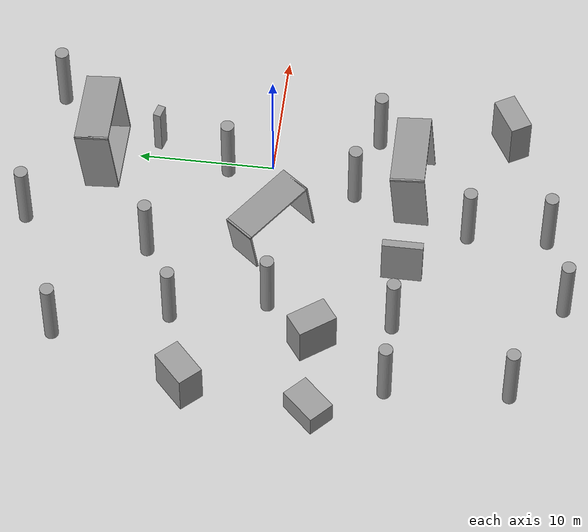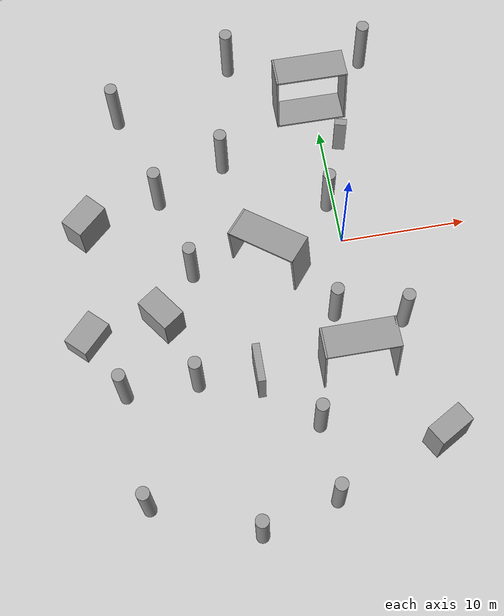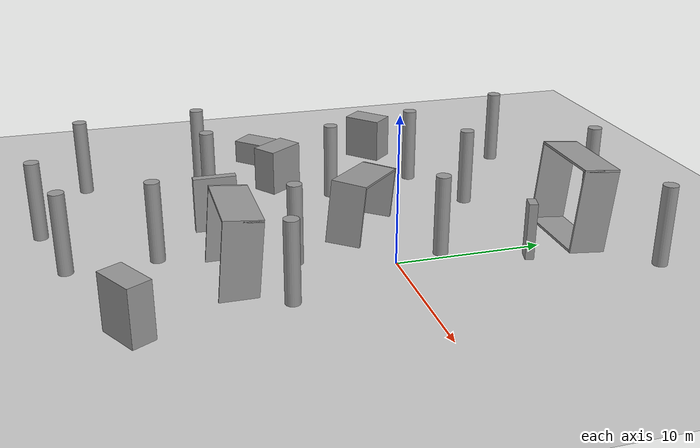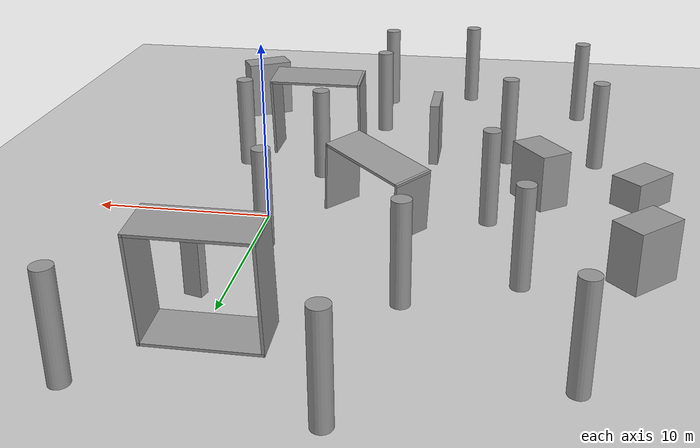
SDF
<sdf version="1.6">
 <world name="default">
  <model name="ground_plane">
   <static>1</static>
   <link name="link">
    <collision name="collision">
     <geometry><plane><normal>0 0 1</normal><size>100 100</size></plane></geometry>
     <surface><friction><ode><mu>100</mu><mu2>50</mu2></ode></friction></surface>
    </collision>
    <visual name="visual">
     <cast_shadows>0</cast_shadows>
     <geometry><plane><normal>0 0 1</normal><size>100 100</size></plane></geometry>
     <material>
      <script><uri>file://media/materials/scripts/gazebo.material</uri><name>Gazebo/Grey</name></script>
     </material>
    </visual>
   </link>
  </model>
  <model name="unit_cylinder_clone_9">
   <pose>-0.632732 3.27501 2.75253 0 -0 0.007234</pose>
   <link name="link">
    <inertial>
     <mass>1</mass>
     <inertia><ixx>0.145833</ixx><ixy>0</ixy><ixz>0</ixz><iyy>0.145833</iyy><iyz>0</iyz><izz>0.125</izz></inertia>
    </inertial>
    <collision name="collision">
     <geometry><cylinder><radius>0.5</radius><length>5.50507</length></cylinder></geometry>
    </collision>
    <visual name="visual">
     <geometry><cylinder><radius>0.5</radius><length>5.50507</length></cylinder></geometry>
     <material>
      <script><name>Gazebo/Grey</name><uri>file://media/materials/scripts/gazebo.material</uri></script>
     </material>
    </visual>
   </link>
  </model>
  <model name="unit_cylinder_clone_7_clone_2">
   <pose>-8.46768 8.17615 2.75253 0 -0 0.007287</pose>
   <link name="link">
    <inertial>
     <mass>1</mass>
     <inertia><ixx>0.145833</ixx><ixy>0</ixy><ixz>0</ixz><iyy>0.145833</iyy><iyz>0</iyz><izz>0.125</izz></inertia>
    </inertial>
    <collision name="collision">
     <geometry><cylinder><radius>0.5</radius><length>5.50507</length></cylinder></geometry>
    </collision>
    <visual name="visual">
     <geometry><cylinder><radius>0.5</radius><length>5.50507</length></cylinder></geometry>
     <material>
      <script><name>Gazebo/Grey</name><uri>file://media/materials/scripts/gazebo.material</uri></script>
     </material>
    </visual>
   </link>
  </model>
  <model name="vRoom_clone_3_clone_clone_9_clone_1">
   <link name="Wall_0">
    <pose>-2.8 -0 -1e-06 -0 -0 -1.5708</pose>
    <velocity_decay><linear>0</linear><angular>0</angular></velocity_decay>
    <visual name="Wall_0_Visual">
     <pose>0 0 1.25 0 -0 0</pose>
     <geometry><box><size>5.75 0.15 2.5</size></box></geometry>
     <material>
      <script><uri>file://media/materials/scripts/gazebo.material</uri><name>Gazebo/Grey</name></script>
      <ambient>1 1 1 1</ambient>
     </material>
    </visual>
    <collision name="Wall_0_Collision">
     <pose>0 0 1.25 0 -0 0</pose>
     <geometry><box><size>5.75 0.15 2.5</size></box></geometry>
     <surface>
      <friction>
       <ode><mu>1</mu><mu2>1</mu2><fdir1>0 0 0</fdir1><slip1>0</slip1><slip2>0</slip2></ode>
       <torsional>
        <coefficient>1</coefficient>
        <patch_radius>0</patch_radius>
        <surface_radius>0</surface_radius>
        <use_patch_radius>1</use_patch_radius>
        <ode><slip>0</slip></ode>
       </torsional>
      </friction>
      <bounce><restitution_coefficient>0</restitution_coefficient><threshold>1e+06</threshold></bounce>
      <contact>
       <collide_without_contact>0</collide_without_contact>
       <collide_without_contact_bitmask>1</collide_without_contact_bitmask>
       <collide_bitmask>1</collide_bitmask>
       <ode>
        <soft_cfm>0</soft_cfm>
        <soft_erp>0.2</soft_erp>
        <kp>1e+13</kp>
        <kd>1</kd>
        <max_vel>0.01</max_vel>
        <min_depth>0</min_depth>
       </ode>
       <bullet>
        <split_impulse>1</split_impulse>
        <split_impulse_penetration_threshold>-0.01</split_impulse_penetration_threshold>
        <soft_cfm>0</soft_cfm>
        <soft_erp>0.2</soft_erp>
        <kp>1e+13</kp>
        <kd>1</kd>
       </bullet>
      </contact>
     </surface>
    </collision>
   </link>
   <link name="Wall_1">
    <pose>2e-06 -2.8 2e-06 0 -0 0</pose>
    <velocity_decay><linear>0</linear><angular>0</angular></velocity_decay>
    <visual name="Wall_1_Visual">
     <pose>0 0 1.25 0 -0 0</pose>
     <geometry><box><size>5.75 0.15 2.5</size></box></geometry>
     <material>
      <script><uri>file://media/materials/scripts/gazebo.material</uri><name>Gazebo/Grey</name></script>
      <ambient>1 1 1 1</ambient>
     </material>
    </visual>
    <collision name="Wall_1_Collision">
     <pose>0 0 1.25 0 -0 0</pose>
     <geometry><box><size>5.75 0.15 2.5</size></box></geometry>
     <surface>
      <friction>
       <ode><mu>1</mu><mu2>1</mu2><fdir1>0 0 0</fdir1><slip1>0</slip1><slip2>0</slip2></ode>
       <torsional>
        <coefficient>1</coefficient>
        <patch_radius>0</patch_radius>
        <surface_radius>0</surface_radius>
        <use_patch_radius>1</use_patch_radius>
        <ode><slip>0</slip></ode>
       </torsional>
      </friction>
      <bounce><restitution_coefficient>0</restitution_coefficient><threshold>1e+06</threshold></bounce>
      <contact>
       <collide_without_contact>0</collide_without_contact>
       <collide_without_contact_bitmask>1</collide_without_contact_bitmask>
       <collide_bitmask>1</collide_bitmask>
       <ode>
        <soft_cfm>0</soft_cfm>
        <soft_erp>0.2</soft_erp>
        <kp>1e+13</kp>
        <kd>1</kd>
        <max_vel>0.01</max_vel>
        <min_depth>0</min_depth>
       </ode>
       <bullet>
        <split_impulse>1</split_impulse>
        <split_impulse_penetration_threshold>-0.01</split_impulse_penetration_threshold>
        <soft_cfm>0</soft_cfm>
        <soft_erp>0.2</soft_erp>
        <kp>1e+13</kp>
        <kd>1</kd>
       </bullet>
      </contact>
     </surface>
    </collision>
   </link>
   <link name="Wall_2">
    <pose>2.8 0 1e-06 0 -0 1.5708</pose>
    <velocity_decay><linear>0</linear><angular>0</angular></velocity_decay>
    <visual name="Wall_2_Visual">
     <pose>0 0 1.25 0 -0 0</pose>
     <geometry><box><size>5.75 0.15 2.5</size></box></geometry>
     <material>
      <script><uri>file://media/materials/scripts/gazebo.material</uri><name>Gazebo/Grey</name></script>
      <ambient>1 1 1 1</ambient>
     </material>
    </visual>
    <collision name="Wall_2_Collision">
     <pose>0 0 1.25 0 -0 0</pose>
     <geometry><box><size>5.75 0.15 2.5</size></box></geometry>
     <surface>
      <friction>
       <ode><mu>1</mu><mu2>1</mu2><fdir1>0 0 0</fdir1><slip1>0</slip1><slip2>0</slip2></ode>
       <torsional>
        <coefficient>1</coefficient>
        <patch_radius>0</patch_radius>
        <surface_radius>0</surface_radius>
        <use_patch_radius>1</use_patch_radius>
        <ode><slip>0</slip></ode>
       </torsional>
      </friction>
      <bounce><restitution_coefficient>0</restitution_coefficient><threshold>1e+06</threshold></bounce>
      <contact>
       <collide_without_contact>0</collide_without_contact>
       <collide_without_contact_bitmask>1</collide_without_contact_bitmask>
       <collide_bitmask>1</collide_bitmask>
       <ode>
        <soft_cfm>0</soft_cfm>
        <soft_erp>0.2</soft_erp>
        <kp>1e+13</kp>
        <kd>1</kd>
        <max_vel>0.01</max_vel>
        <min_depth>0</min_depth>
       </ode>
       <bullet>
        <split_impulse>1</split_impulse>
        <split_impulse_penetration_threshold>-0.01</split_impulse_penetration_threshold>
        <soft_cfm>0</soft_cfm>
        <soft_erp>0.2</soft_erp>
        <kp>1e+13</kp>
        <kd>1</kd>
       </bullet>
      </contact>
     </surface>
    </collision>
   </link>
   <link name="Wall_3">
    <pose>-2e-06 2.8 -2e-06 0 -0 3.14159</pose>
    <velocity_decay><linear>0</linear><angular>0</angular></velocity_decay>
    <visual name="Wall_3_Visual">
     <pose>0 0 1.25 0 -0 0</pose>
     <geometry><box><size>5.75 0.15 2.5</size></box></geometry>
     <material>
      <script><uri>file://media/materials/scripts/gazebo.material</uri><name>Gazebo/Grey</name></script>
      <ambient>1 1 1 1</ambient>
     </material>
    </visual>
    <collision name="Wall_3_Collision">
     <pose>0 0 1.25 0 -0 0</pose>
     <geometry><box><size>5.75 0.15 2.5</size></box></geometry>
     <surface>
      <friction>
       <ode><mu>1</mu><mu2>1</mu2><fdir1>0 0 0</fdir1><slip1>0</slip1><slip2>0</slip2></ode>
       <torsional>
        <coefficient>1</coefficient>
        <patch_radius>0</patch_radius>
        <surface_radius>0</surface_radius>
        <use_patch_radius>1</use_patch_radius>
        <ode><slip>0</slip></ode>
       </torsional>
      </friction>
      <bounce><restitution_coefficient>0</restitution_coefficient><threshold>1e+06</threshold></bounce>
      <contact>
       <collide_without_contact>0</collide_without_contact>
       <collide_without_contact_bitmask>1</collide_without_contact_bitmask>
       <collide_bitmask>1</collide_bitmask>
       <ode>
        <soft_cfm>0</soft_cfm>
        <soft_erp>0.2</soft_erp>
        <kp>1e+13</kp>
        <kd>1</kd>
        <max_vel>0.01</max_vel>
        <min_depth>0</min_depth>
       </ode>
       <bullet>
        <split_impulse>1</split_impulse>
        <split_impulse_penetration_threshold>-0.01</split_impulse_penetration_threshold>
        <soft_cfm>0</soft_cfm>
        <soft_erp>0.2</soft_erp>
        <kp>1e+13</kp>
        <kd>1</kd>
       </bullet>
      </contact>
     </surface>
    </collision>
   </link>
   <static>1</static>
   <pose>-0.451678 13.821 3.0326 4e-06 -1.47998 1.57</pose>
  </model>
  <model name="unit_cylinder_clone_9_clone_0">
   <pose>-18.6335 -10.1401 2.75253 0 -0 0.00813</pose>
   <link name="link">
    <inertial>
     <mass>1</mass>
     <inertia><ixx>0.145833</ixx><ixy>0</ixy><ixz>0</ixz><iyy>0.145833</iyy><iyz>0</iyz><izz>0.125</izz></inertia>
    </inertial>
    <collision name="collision">
     <geometry><cylinder><radius>0.5</radius><length>5.50507</length></cylinder></geometry>
    </collision>
    <visual name="visual">
     <geometry><cylinder><radius>0.5</radius><length>5.50507</length></cylinder></geometry>
     <material>
      <script><name>Gazebo/Grey</name><uri>file://media/materials/scripts/gazebo.material</uri></script>
     </material>
    </visual>
   </link>
  </model>
  <model name="unit_cylinder_clone_9_clone_1">
   <pose>-10.2069 -22.173 2.75253 0 -0 0.009019</pose>
   <link name="link">
    <inertial>
     <mass>1</mass>
     <inertia><ixx>0.145833</ixx><ixy>0</ixy><ixz>0</ixz><iyy>0.145833</iyy><iyz>0</iyz><izz>0.125</izz></inertia>
    </inertial>
    <collision name="collision">
     <geometry><cylinder><radius>0.5</radius><length>5.50507</length></cylinder></geometry>
    </collision>
    <visual name="visual">
     <geometry><cylinder><radius>0.5</radius><length>5.50507</length></cylinder></geometry>
     <material>
      <script><name>Gazebo/Grey</name><uri>file://media/materials/scripts/gazebo.material</uri></script>
     </material>
    </visual>
   </link>
  </model>
  <model name="unit_cylinder_clone_9_clone_3">
   <pose>-1.84186 -6.24007 2.75253 0 -0 0.008595</pose>
   <link name="link">
    <inertial>
     <mass>1</mass>
     <inertia><ixx>0.145833</ixx><ixy>0</ixy><ixz>0</ixz><iyy>0.145833</iyy><iyz>0</iyz><izz>0.125</izz></inertia>
    </inertial>
    <collision name="collision">
     <geometry><cylinder><radius>0.5</radius><length>5.50507</length></cylinder></geometry>
    </collision>
    <visual name="visual">
     <geometry><cylinder><radius>0.5</radius><length>5.50507</length></cylinder></geometry>
     <material>
      <script><name>Gazebo/Grey</name><uri>file://media/materials/scripts/gazebo.material</uri></script>
     </material>
    </visual>
   </link>
  </model>
  <model name="unit_cylinder_clone_9_clone_5">
   <pose>-14.0461 5.72199 2.75253 0 -0 0.00823</pose>
   <link name="link">
    <inertial>
     <mass>1</mass>
     <inertia><ixx>0.145833</ixx><ixy>0</ixy><ixz>0</ixz><iyy>0.145833</iyy><iyz>0</iyz><izz>0.125</izz></inertia>
    </inertial>
    <collision name="collision">
     <geometry><cylinder><radius>0.5</radius><length>5.50507</length></cylinder></geometry>
    </collision>
    <visual name="visual">
     <geometry><cylinder><radius>0.5</radius><length>5.50507</length></cylinder></geometry>
     <material>
      <script><name>Gazebo/Grey</name><uri>file://media/materials/scripts/gazebo.material</uri></script>
     </material>
    </visual>
   </link>
  </model>
  <model name="unit_box_2">
   <pose>-8.48938 -10.3568 1.95434 -1e-06 -0 -0.000585</pose>
   <link name="link">
    <inertial>
     <mass>1</mass>
     <inertia>
      <ixx>0.166667</ixx>
      <ixy>0</ixy>
      <ixz>0</ixz>
      <iyy>0.166667</iyy>
      <iyz>0</iyz>
      <izz>0.166667</izz>
     </inertia>
    </inertial>
    <collision name="collision"><geometry><box><size>0.580075 2.95919 3.90868</size></box></geometry></collision>
    <visual name="visual">
     <geometry><box><size>0.580075 2.95919 3.90868</size></box></geometry>
     <material>
      <script><name>Gazebo/Grey</name><uri>file://media/materials/scripts/gazebo.material</uri></script>
     </material>
    </visual>
   </link>
  </model>
  <model name="unit_box_2_clone">
   <pose>4.37377 -17.237 1.88991 -1e-06 -0 -1.04764</pose>
   <link name="link">
    <inertial>
     <mass>1</mass>
     <inertia>
      <ixx>0.166667</ixx>
      <ixy>0</ixy>
      <ixz>0</ixz>
      <iyy>0.166667</iyy>
      <iyz>0</iyz>
      <izz>0.166667</izz>
     </inertia>
    </inertial>
    <collision name="collision"><geometry><box><size>1.62301 2.95919 3.77983</size></box></geometry></collision>
    <visual name="visual">
     <geometry><box><size>1.62301 2.95919 3.77983</size></box></geometry>
     <material>
      <script><name>Gazebo/Grey</name><uri>file://media/materials/scripts/gazebo.material</uri></script>
     </material>
    </visual>
   </link>
  </model>
  <model name="unit_box_2_clone_0">
   <pose>-20.9023 -5.04265 0.899376 1.62226 -1.57079 -2.38505</pose>
   <link name="link">
    <inertial>
     <mass>1</mass>
     <inertia>
      <ixx>0.166667</ixx>
      <ixy>0</ixy>
      <ixz>0</ixz>
      <iyy>0.166667</iyy>
      <iyz>0</iyz>
      <izz>0.166667</izz>
     </inertia>
    </inertial>
    <collision name="collision"><geometry><box><size>1.79876 2.95919 2.00566</size></box></geometry></collision>
    <visual name="visual">
     <geometry><box><size>1.79876 2.95919 2.00566</size></box></geometry>
     <material>
      <script><name>Gazebo/Grey</name><uri>file://media/materials/scripts/gazebo.material</uri></script>
     </material>
    </visual>
   </link>
  </model>
  <model name="unit_box_2_clone_1">
   <pose>-15.0529 -4.60285 1.66336 1e-06 -0 0.625572</pose>
   <link name="link">
    <inertial>
     <mass>1</mass>
     <inertia>
      <ixx>0.166667</ixx>
      <ixy>0</ixy>
      <ixz>0</ixz>
      <iyy>0.166667</iyy>
      <iyz>0</iyz>
      <izz>0.166667</izz>
     </inertia>
    </inertial>
    <collision name="collision"><geometry><box><size>1.91266 2.95919 3.32673</size></box></geometry></collision>
    <visual name="visual">
     <geometry><box><size>1.91266 2.95919 3.32673</size></box></geometry>
     <material>
      <script><name>Gazebo/Grey</name><uri>file://media/materials/scripts/gazebo.material</uri></script>
     </material>
    </visual>
   </link>
  </model>
  <model name="unit_cylinder_clone_9_clone_5_clone">
   <pose>-12.2443 -1.09449 2.75253 0 -0 0.00815</pose>
   <link name="link">
    <inertial>
     <mass>1</mass>
     <inertia><ixx>0.145833</ixx><ixy>0</ixy><ixz>0</ixz><iyy>0.145833</iyy><iyz>0</iyz><izz>0.125</izz></inertia>
    </inertial>
    <collision name="collision">
     <geometry><cylinder><radius>0.5</radius><length>5.50507</length></cylinder></geometry>
    </collision>
    <visual name="visual">
     <geometry><cylinder><radius>0.5</radius><length>5.50507</length></cylinder></geometry>
     <material>
      <script><name>Gazebo/Grey</name><uri>file://media/materials/scripts/gazebo.material</uri></script>
     </material>
    </visual>
   </link>
  </model>
  <model name="unit_cylinder_clone_9_clone_5_clone_0">
   <pose>-13.1165 -10.1456 2.75253 0 -0 0.008438</pose>
   <link name="link">
    <inertial>
     <mass>1</mass>
     <inertia><ixx>0.145833</ixx><ixy>0</ixy><ixz>0</ixz><iyy>0.145833</iyy><iyz>0</iyz><izz>0.125</izz></inertia>
    </inertial>
    <collision name="collision">
     <geometry><cylinder><radius>0.5</radius><length>5.50507</length></cylinder></geometry>
    </collision>
    <visual name="visual">
     <geometry><cylinder><radius>0.5</radius><length>5.50507</length></cylinder></geometry>
     <material>
      <script><name>Gazebo/Grey</name><uri>file://media/materials/scripts/gazebo.material</uri></script>
     </material>
    </visual>
   </link>
  </model>
  <model name="unit_cylinder_clone_9_clone_5_clone_1">
   <pose>-16.444 13.8499 2.75253 0 -0 0.009566</pose>
   <link name="link">
    <inertial>
     <mass>1</mass>
     <inertia><ixx>0.145833</ixx><ixy>0</ixy><ixz>0</ixz><iyy>0.145833</iyy><iyz>0</iyz><izz>0.125</izz></inertia>
    </inertial>
    <collision name="collision">
     <geometry><cylinder><radius>0.5</radius><length>5.50507</length></cylinder></geometry>
    </collision>
    <visual name="visual">
     <geometry><cylinder><radius>0.5</radius><length>5.50507</length></cylinder></geometry>
     <material>
      <script><name>Gazebo/Grey</name><uri>file://media/materials/scripts/gazebo.material</uri></script>
     </material>
    </visual>
   </link>
  </model>
  <model name="vRoom_clone_3_clone_clone_9_clone_3">
   <link name="Wall_0">
    <pose>-2.8 -0 -1e-06 -0 -0 -1.5708</pose>
    <velocity_decay><linear>0</linear><angular>0</angular></velocity_decay>
    <visual name="Wall_0_Visual">
     <pose>0 0 1.25 0 -0 0</pose>
     <geometry><box><size>5.75 0.15 2.5</size></box></geometry>
     <material>
      <script><uri>file://media/materials/scripts/gazebo.material</uri><name>Gazebo/Grey</name></script>
      <ambient>1 1 1 1</ambient>
     </material>
    </visual>
    <collision name="Wall_0_Collision">
     <pose>0 0 1.25 0 -0 0</pose>
     <geometry><box><size>5.75 0.15 2.5</size></box></geometry>
     <surface>
      <friction>
       <ode><mu>1</mu><mu2>1</mu2><fdir1>0 0 0</fdir1><slip1>0</slip1><slip2>0</slip2></ode>
       <torsional>
        <coefficient>1</coefficient>
        <patch_radius>0</patch_radius>
        <surface_radius>0</surface_radius>
        <use_patch_radius>1</use_patch_radius>
        <ode><slip>0</slip></ode>
       </torsional>
      </friction>
      <bounce><restitution_coefficient>0</restitution_coefficient><threshold>1e+06</threshold></bounce>
      <contact>
       <collide_without_contact>0</collide_without_contact>
       <collide_without_contact_bitmask>1</collide_without_contact_bitmask>
       <collide_bitmask>1</collide_bitmask>
       <ode>
        <soft_cfm>0</soft_cfm>
        <soft_erp>0.2</soft_erp>
        <kp>1e+13</kp>
        <kd>1</kd>
        <max_vel>0.01</max_vel>
        <min_depth>0</min_depth>
       </ode>
       <bullet>
        <split_impulse>1</split_impulse>
        <split_impulse_penetration_threshold>-0.01</split_impulse_penetration_threshold>
        <soft_cfm>0</soft_cfm>
        <soft_erp>0.2</soft_erp>
        <kp>1e+13</kp>
        <kd>1</kd>
       </bullet>
      </contact>
     </surface>
    </collision>
   </link>
   <link name="Wall_1">
    <pose>2e-06 -2.8 2e-06 0 -0 0</pose>
    <velocity_decay><linear>0</linear><angular>0</angular></velocity_decay>
    <visual name="Wall_1_Visual">
     <pose>0 0 1.25 0 -0 0</pose>
     <geometry><box><size>5.75 0.15 2.5</size></box></geometry>
     <material>
      <script><uri>file://media/materials/scripts/gazebo.material</uri><name>Gazebo/Grey</name></script>
      <ambient>1 1 1 1</ambient>
     </material>
    </visual>
    <collision name="Wall_1_Collision">
     <pose>0 0 1.25 0 -0 0</pose>
     <geometry><box><size>5.75 0.15 2.5</size></box></geometry>
     <surface>
      <friction>
       <ode><mu>1</mu><mu2>1</mu2><fdir1>0 0 0</fdir1><slip1>0</slip1><slip2>0</slip2></ode>
       <torsional>
        <coefficient>1</coefficient>
        <patch_radius>0</patch_radius>
        <surface_radius>0</surface_radius>
        <use_patch_radius>1</use_patch_radius>
        <ode><slip>0</slip></ode>
       </torsional>
      </friction>
      <bounce><restitution_coefficient>0</restitution_coefficient><threshold>1e+06</threshold></bounce>
      <contact>
       <collide_without_contact>0</collide_without_contact>
       <collide_without_contact_bitmask>1</collide_without_contact_bitmask>
       <collide_bitmask>1</collide_bitmask>
       <ode>
        <soft_cfm>0</soft_cfm>
        <soft_erp>0.2</soft_erp>
        <kp>1e+13</kp>
        <kd>1</kd>
        <max_vel>0.01</max_vel>
        <min_depth>0</min_depth>
       </ode>
       <bullet>
        <split_impulse>1</split_impulse>
        <split_impulse_penetration_threshold>-0.01</split_impulse_penetration_threshold>
        <soft_cfm>0</soft_cfm>
        <soft_erp>0.2</soft_erp>
        <kp>1e+13</kp>
        <kd>1</kd>
       </bullet>
      </contact>
     </surface>
    </collision>
   </link>
   <link name="Wall_2">
    <pose>2.8 0 1e-06 0 -0 1.5708</pose>
    <velocity_decay><linear>0</linear><angular>0</angular></velocity_decay>
    <visual name="Wall_2_Visual">
     <pose>0 0 1.25 0 -0 0</pose>
     <geometry><box><size>5.75 0.15 2.5</size></box></geometry>
     <material>
      <script><uri>file://media/materials/scripts/gazebo.material</uri><name>Gazebo/Grey</name></script>
      <ambient>1 1 1 1</ambient>
     </material>
    </visual>
    <collision name="Wall_2_Collision">
     <pose>0 0 1.25 0 -0 0</pose>
     <geometry><box><size>5.75 0.15 2.5</size></box></geometry>
     <surface>
      <friction>
       <ode><mu>1</mu><mu2>1</mu2><fdir1>0 0 0</fdir1><slip1>0</slip1><slip2>0</slip2></ode>
       <torsional>
        <coefficient>1</coefficient>
        <patch_radius>0</patch_radius>
        <surface_radius>0</surface_radius>
        <use_patch_radius>1</use_patch_radius>
        <ode><slip>0</slip></ode>
       </torsional>
      </friction>
      <bounce><restitution_coefficient>0</restitution_coefficient><threshold>1e+06</threshold></bounce>
      <contact>
       <collide_without_contact>0</collide_without_contact>
       <collide_without_contact_bitmask>1</collide_without_contact_bitmask>
       <collide_bitmask>1</collide_bitmask>
       <ode>
        <soft_cfm>0</soft_cfm>
        <soft_erp>0.2</soft_erp>
        <kp>1e+13</kp>
        <kd>1</kd>
        <max_vel>0.01</max_vel>
        <min_depth>0</min_depth>
       </ode>
       <bullet>
        <split_impulse>1</split_impulse>
        <split_impulse_penetration_threshold>-0.01</split_impulse_penetration_threshold>
        <soft_cfm>0</soft_cfm>
        <soft_erp>0.2</soft_erp>
        <kp>1e+13</kp>
        <kd>1</kd>
       </bullet>
      </contact>
     </surface>
    </collision>
   </link>
   <link name="Wall_3">
    <pose>-2e-06 2.8 -2e-06 0 -0 3.14159</pose>
    <velocity_decay><linear>0</linear><angular>0</angular></velocity_decay>
    <visual name="Wall_3_Visual">
     <pose>0 0 1.25 0 -0 0</pose>
     <geometry><box><size>5.75 0.15 2.5</size></box></geometry>
     <material>
      <script><uri>file://media/materials/scripts/gazebo.material</uri><name>Gazebo/Grey</name></script>
      <ambient>1 1 1 1</ambient>
     </material>
    </visual>
    <collision name="Wall_3_Collision">
     <pose>0 0 1.25 0 -0 0</pose>
     <geometry><box><size>5.75 0.15 2.5</size></box></geometry>
     <surface>
      <friction>
       <ode><mu>1</mu><mu2>1</mu2><fdir1>0 0 0</fdir1><slip1>0</slip1><slip2>0</slip2></ode>
       <torsional>
        <coefficient>1</coefficient>
        <patch_radius>0</patch_radius>
        <surface_radius>0</surface_radius>
        <use_patch_radius>1</use_patch_radius>
        <ode><slip>0</slip></ode>
       </torsional>
      </friction>
      <bounce><restitution_coefficient>0</restitution_coefficient><threshold>1e+06</threshold></bounce>
      <contact>
       <collide_without_contact>0</collide_without_contact>
       <collide_without_contact_bitmask>1</collide_without_contact_bitmask>
       <collide_bitmask>1</collide_bitmask>
       <ode>
        <soft_cfm>0</soft_cfm>
        <soft_erp>0.2</soft_erp>
        <kp>1e+13</kp>
        <kd>1</kd>
        <max_vel>0.01</max_vel>
        <min_depth>0</min_depth>
       </ode>
       <bullet>
        <split_impulse>1</split_impulse>
        <split_impulse_penetration_threshold>-0.01</split_impulse_penetration_threshold>
        <soft_cfm>0</soft_cfm>
        <soft_erp>0.2</soft_erp>
        <kp>1e+13</kp>
        <kd>1</kd>
       </bullet>
      </contact>
     </surface>
    </collision>
   </link>
   <static>1</static>
   <pose>-0.860591 -9.16157 2.16038 4e-06 -1.47998 1.57079</pose>
  </model>
  <model name="vRoom_clone_3_clone_clone_9_clone_0_clone">
   <link name="Wall_0">
    <pose>-2.8 -0 -1e-06 -0 -0 -1.5708</pose>
    <velocity_decay><linear>0</linear><angular>0</angular></velocity_decay>
    <visual name="Wall_0_Visual">
     <pose>0 0 1.25 0 -0 0</pose>
     <geometry><box><size>5.75 0.15 2.5</size></box></geometry>
     <material>
      <script><uri>file://media/materials/scripts/gazebo.material</uri><name>Gazebo/Grey</name></script>
      <ambient>1 1 1 1</ambient>
     </material>
    </visual>
    <collision name="Wall_0_Collision">
     <pose>0 0 1.25 0 -0 0</pose>
     <geometry><box><size>5.75 0.15 2.5</size></box></geometry>
     <surface>
      <friction>
       <ode><mu>1</mu><mu2>1</mu2><fdir1>0 0 0</fdir1><slip1>0</slip1><slip2>0</slip2></ode>
       <torsional>
        <coefficient>1</coefficient>
        <patch_radius>0</patch_radius>
        <surface_radius>0</surface_radius>
        <use_patch_radius>1</use_patch_radius>
        <ode><slip>0</slip></ode>
       </torsional>
      </friction>
      <bounce><restitution_coefficient>0</restitution_coefficient><threshold>1e+06</threshold></bounce>
      <contact>
       <collide_without_contact>0</collide_without_contact>
       <collide_without_contact_bitmask>1</collide_without_contact_bitmask>
       <collide_bitmask>1</collide_bitmask>
       <ode>
        <soft_cfm>0</soft_cfm>
        <soft_erp>0.2</soft_erp>
        <kp>1e+13</kp>
        <kd>1</kd>
        <max_vel>0.01</max_vel>
        <min_depth>0</min_depth>
       </ode>
       <bullet>
        <split_impulse>1</split_impulse>
        <split_impulse_penetration_threshold>-0.01</split_impulse_penetration_threshold>
        <soft_cfm>0</soft_cfm>
        <soft_erp>0.2</soft_erp>
        <kp>1e+13</kp>
        <kd>1</kd>
       </bullet>
      </contact>
     </surface>
    </collision>
   </link>
   <link name="Wall_1">
    <pose>2e-06 -2.8 2e-06 0 -0 0</pose>
    <velocity_decay><linear>0</linear><angular>0</angular></velocity_decay>
    <visual name="Wall_1_Visual">
     <pose>0 0 1.25 0 -0 0</pose>
     <geometry><box><size>5.75 0.15 2.5</size></box></geometry>
     <material>
      <script><uri>file://media/materials/scripts/gazebo.material</uri><name>Gazebo/Grey</name></script>
      <ambient>1 1 1 1</ambient>
     </material>
    </visual>
    <collision name="Wall_1_Collision">
     <pose>0 0 1.25 0 -0 0</pose>
     <geometry><box><size>5.75 0.15 2.5</size></box></geometry>
     <surface>
      <friction>
       <ode><mu>1</mu><mu2>1</mu2><fdir1>0 0 0</fdir1><slip1>0</slip1><slip2>0</slip2></ode>
       <torsional>
        <coefficient>1</coefficient>
        <patch_radius>0</patch_radius>
        <surface_radius>0</surface_radius>
        <use_patch_radius>1</use_patch_radius>
        <ode><slip>0</slip></ode>
       </torsional>
      </friction>
      <bounce><restitution_coefficient>0</restitution_coefficient><threshold>1e+06</threshold></bounce>
      <contact>
       <collide_without_contact>0</collide_without_contact>
       <collide_without_contact_bitmask>1</collide_without_contact_bitmask>
       <collide_bitmask>1</collide_bitmask>
       <ode>
        <soft_cfm>0</soft_cfm>
        <soft_erp>0.2</soft_erp>
        <kp>1e+13</kp>
        <kd>1</kd>
        <max_vel>0.01</max_vel>
        <min_depth>0</min_depth>
       </ode>
       <bullet>
        <split_impulse>1</split_impulse>
        <split_impulse_penetration_threshold>-0.01</split_impulse_penetration_threshold>
        <soft_cfm>0</soft_cfm>
        <soft_erp>0.2</soft_erp>
        <kp>1e+13</kp>
        <kd>1</kd>
       </bullet>
      </contact>
     </surface>
    </collision>
   </link>
   <link name="Wall_2">
    <pose>2.8 0 1e-06 0 -0 1.5708</pose>
    <velocity_decay><linear>0</linear><angular>0</angular></velocity_decay>
    <visual name="Wall_2_Visual">
     <pose>0 0 1.25 0 -0 0</pose>
     <geometry><box><size>5.75 0.15 2.5</size></box></geometry>
     <material>
      <script><uri>file://media/materials/scripts/gazebo.material</uri><name>Gazebo/Grey</name></script>
      <ambient>1 1 1 1</ambient>
     </material>
    </visual>
    <collision name="Wall_2_Collision">
     <pose>0 0 1.25 0 -0 0</pose>
     <geometry><box><size>5.75 0.15 2.5</size></box></geometry>
     <surface>
      <friction>
       <ode><mu>1</mu><mu2>1</mu2><fdir1>0 0 0</fdir1><slip1>0</slip1><slip2>0</slip2></ode>
       <torsional>
        <coefficient>1</coefficient>
        <patch_radius>0</patch_radius>
        <surface_radius>0</surface_radius>
        <use_patch_radius>1</use_patch_radius>
        <ode><slip>0</slip></ode>
       </torsional>
      </friction>
      <bounce><restitution_coefficient>0</restitution_coefficient><threshold>1e+06</threshold></bounce>
      <contact>
       <collide_without_contact>0</collide_without_contact>
       <collide_without_contact_bitmask>1</collide_without_contact_bitmask>
       <collide_bitmask>1</collide_bitmask>
       <ode>
        <soft_cfm>0</soft_cfm>
        <soft_erp>0.2</soft_erp>
        <kp>1e+13</kp>
        <kd>1</kd>
        <max_vel>0.01</max_vel>
        <min_depth>0</min_depth>
       </ode>
       <bullet>
        <split_impulse>1</split_impulse>
        <split_impulse_penetration_threshold>-0.01</split_impulse_penetration_threshold>
        <soft_cfm>0</soft_cfm>
        <soft_erp>0.2</soft_erp>
        <kp>1e+13</kp>
        <kd>1</kd>
       </bullet>
      </contact>
     </surface>
    </collision>
   </link>
   <link name="Wall_3">
    <pose>-2e-06 2.8 -2e-06 0 -0 3.14159</pose>
    <velocity_decay><linear>0</linear><angular>0</angular></velocity_decay>
    <visual name="Wall_3_Visual">
     <pose>0 0 1.25 0 -0 0</pose>
     <geometry><box><size>5.75 0.15 2.5</size></box></geometry>
     <material>
      <script><uri>file://media/materials/scripts/gazebo.material</uri><name>Gazebo/Grey</name></script>
      <ambient>1 1 1 1</ambient>
     </material>
    </visual>
    <collision name="Wall_3_Collision">
     <pose>0 0 1.25 0 -0 0</pose>
     <geometry><box><size>5.75 0.15 2.5</size></box></geometry>
     <surface>
      <friction>
       <ode><mu>1</mu><mu2>1</mu2><fdir1>0 0 0</fdir1><slip1>0</slip1><slip2>0</slip2></ode>
       <torsional>
        <coefficient>1</coefficient>
        <patch_radius>0</patch_radius>
        <surface_radius>0</surface_radius>
        <use_patch_radius>1</use_patch_radius>
        <ode><slip>0</slip></ode>
       </torsional>
      </friction>
      <bounce><restitution_coefficient>0</restitution_coefficient><threshold>1e+06</threshold></bounce>
      <contact>
       <collide_without_contact>0</collide_without_contact>
       <collide_without_contact_bitmask>1</collide_without_contact_bitmask>
       <collide_bitmask>1</collide_bitmask>
       <ode>
        <soft_cfm>0</soft_cfm>
        <soft_erp>0.2</soft_erp>
        <kp>1e+13</kp>
        <kd>1</kd>
        <max_vel>0.01</max_vel>
        <min_depth>0</min_depth>
       </ode>
       <bullet>
        <split_impulse>1</split_impulse>
        <split_impulse_penetration_threshold>-0.01</split_impulse_penetration_threshold>
        <soft_cfm>0</soft_cfm>
        <soft_erp>0.2</soft_erp>
        <kp>1e+13</kp>
        <kd>1</kd>
       </bullet>
      </contact>
     </surface>
    </collision>
   </link>
   <static>1</static>
   <pose>-5.17559 0.318563 1 -1.11103 -1.4406 1.99895</pose>
  </model>
  <model name="unit_cylinder_clone_7_clone_1_clone_clone">
   <pose>-17.976 -18.9011 2.75253 0 -0 0.007633</pose>
   <link name="link">
    <inertial>
     <mass>1</mass>
     <inertia><ixx>0.145833</ixx><ixy>0</ixy><ixz>0</ixz><iyy>0.145833</iyy><iyz>0</iyz><izz>0.125</izz></inertia>
    </inertial>
    <collision name="collision">
     <geometry><cylinder><radius>0.5</radius><length>5.50507</length></cylinder></geometry>
    </collision>
    <visual name="visual">
     <geometry><cylinder><radius>0.5</radius><length>5.50507</length></cylinder></geometry>
     <material>
      <script><name>Gazebo/Grey</name><uri>file://media/materials/scripts/gazebo.material</uri></script>
     </material>
    </visual>
   </link>
  </model>
  <model name="unit_cylinder_clone_7_clone_1_clone_2_clone_0">
   <pose>-6.57523 17.4399 2.75253 0 -0 0.007554</pose>
   <link name="link">
    <inertial>
     <mass>1</mass>
     <inertia><ixx>0.145833</ixx><ixy>0</ixy><ixz>0</ixz><iyy>0.145833</iyy><iyz>0</iyz><izz>0.125</izz></inertia>
    </inertial>
    <collision name="collision">
     <geometry><cylinder><radius>0.5</radius><length>5.50507</length></cylinder></geometry>
    </collision>
    <visual name="visual">
     <geometry><cylinder><radius>0.5</radius><length>5.50507</length></cylinder></geometry>
     <material>
      <script><name>Gazebo/Grey</name><uri>file://media/materials/scripts/gazebo.material</uri></script>
     </material>
    </visual>
   </link>
  </model>
  <model name="unit_cylinder_clone_7_clone_1_clone_2_clone_1">
   <pose>-4.6056 -14.8031 2.75253 0 -0 0.007157</pose>
   <link name="link">
    <inertial>
     <mass>1</mass>
     <inertia><ixx>0.145833</ixx><ixy>0</ixy><ixz>0</ixz><iyy>0.145833</iyy><iyz>0</iyz><izz>0.125</izz></inertia>
    </inertial>
    <collision name="collision">
     <geometry><cylinder><radius>0.5</radius><length>5.50507</length></cylinder></geometry>
    </collision>
    <visual name="visual">
     <geometry><cylinder><radius>0.5</radius><length>5.50507</length></cylinder></geometry>
     <material>
      <script><name>Gazebo/Grey</name><uri>file://media/materials/scripts/gazebo.material</uri></script>
     </material>
    </visual>
   </link>
  </model>
  <model name="unit_box_2_clone_1_clone">
   <pose>-19.9715 4.13837 1.66336 -1e-06 -0 -0.819843</pose>
   <link name="link">
    <inertial>
     <mass>1</mass>
     <inertia>
      <ixx>0.166667</ixx>
      <ixy>0</ixy>
      <ixz>0</ixz>
      <iyy>0.166667</iyy>
      <iyz>0</iyz>
      <izz>0.166667</izz>
     </inertia>
    </inertial>
    <collision name="collision"><geometry><box><size>1.91265 2.95919 3.32673</size></box></geometry></collision>
    <visual name="visual">
     <geometry><box><size>1.91265 2.95919 3.32673</size></box></geometry>
     <material>
      <script><name>Gazebo/Grey</name><uri>file://media/materials/scripts/gazebo.material</uri></script>
     </material>
    </visual>
   </link>
  </model>
  <model name="unit_cylinder_clone_9_clone_5_clone_1_clone_4">
   <pose>-4.37833 -20.6006 2.75253 0 -0 0.008319</pose>
   <link name="link">
    <inertial>
     <mass>1</mass>
     <inertia><ixx>0.145833</ixx><ixy>0</ixy><ixz>0</ixz><iyy>0.145833</iyy><iyz>0</iyz><izz>0.125</izz></inertia>
    </inertial>
    <collision name="collision">
     <geometry><cylinder><radius>0.5</radius><length>5.50507</length></cylinder></geometry>
    </collision>
    <visual name="visual">
     <geometry><cylinder><radius>0.5</radius><length>5.50507</length></cylinder></geometry>
     <material>
      <script><name>Gazebo/Grey</name><uri>file://media/materials/scripts/gazebo.material</uri></script>
     </material>
    </visual>
   </link>
  </model>
  <model name="unit_cylinder_clone_9_clone_2_clone">
   <pose>3.2741 -7.60929 2.75253 0 -0 0.009192</pose>
   <link name="link">
    <inertial>
     <mass>1</mass>
     <inertia><ixx>0.145833</ixx><ixy>0</ixy><ixz>0</ixz><iyy>0.145833</iyy><iyz>0</iyz><izz>0.125</izz></inertia>
    </inertial>
    <collision name="collision">
     <geometry><cylinder><radius>0.5</radius><length>5.50507</length></cylinder></geometry>
    </collision>
    <visual name="visual">
     <geometry><cylinder><radius>0.5</radius><length>5.50507</length></cylinder></geometry>
     <material>
      <script><name>Gazebo/Grey</name><uri>file://media/materials/scripts/gazebo.material</uri></script>
     </material>
    </visual>
   </link>
  </model>
  <model name="unit_cylinder_clone_9_clone_2_clone_0">
   <pose>4.6665 16.341 2.75253 0 -0 0.551664</pose>
   <link name="link">
    <inertial>
     <mass>1</mass>
     <inertia><ixx>0.145833</ixx><ixy>0</ixy><ixz>0</ixz><iyy>0.145833</iyy><iyz>0</iyz><izz>0.125</izz></inertia>
    </inertial>
    <collision name="collision">
     <geometry><cylinder><radius>0.5</radius><length>5.50507</length></cylinder></geometry>
    </collision>
    <visual name="visual">
     <geometry><cylinder><radius>0.5</radius><length>5.50507</length></cylinder></geometry>
     <material>
      <script><name>Gazebo/Grey</name><uri>file://media/materials/scripts/gazebo.material</uri></script>
     </material>
    </visual>
   </link>
  </model>
  <model name="unit_box_2_clone_2">
   <pose>1.38284 8.62919 1.95434 3.14159 -0 -1.83193</pose>
   <link name="link">
    <inertial>
     <mass>1</mass>
     <inertia>
      <ixx>0.166667</ixx>
      <ixy>0</ixy>
      <ixz>0</ixz>
      <iyy>0.166667</iyy>
      <iyz>0</iyz>
      <izz>0.166667</izz>
     </inertia>
    </inertial>
    <collision name="collision"><geometry><box><size>0.580075 0.972425 3.90868</size></box></geometry></collision>
    <visual name="visual">
     <geometry><box><size>0.580075 0.972425 3.90868</size></box></geometry>
     <material>
      <script><name>Gazebo/Grey</name><uri>file://media/materials/scripts/gazebo.material</uri></script>
     </material>
    </visual>
   </link>
  </model>
 </world>
</sdf>
